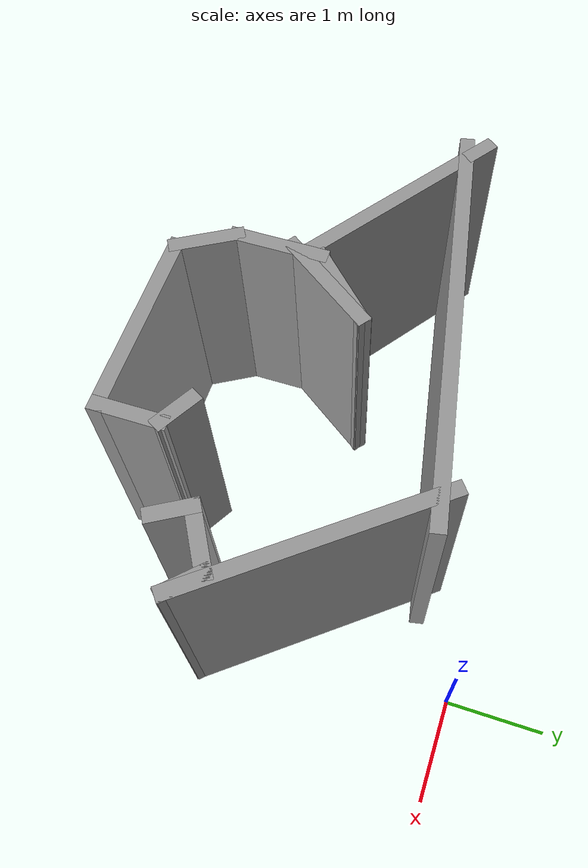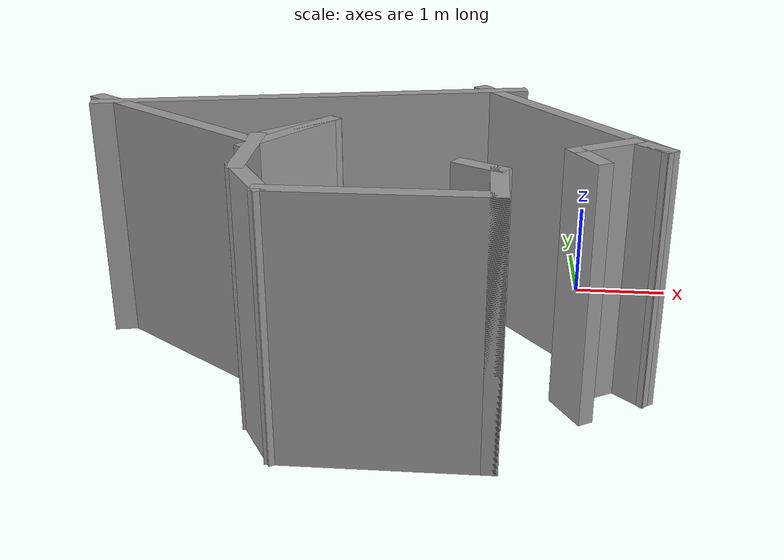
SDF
<?xml version='1.0'?>
<sdf version='1.7'>
  <model name='test_house'>
    <pose>-2.27886 -1.89638 0 0 -0 0</pose>
    <link name='Wall_0'>
      <collision name='Wall_0_Collision'>
        <geometry>
          <box>
            <size>2 0.15 2.5</size>
          </box>
        </geometry>
        <pose>0 0 1.25 0 -0 0</pose>
      </collision>
      <visual name='Wall_0_Visual'>
        <pose>0 0 1.25 0 -0 0</pose>
        <geometry>
          <box>
            <size>2 0.15 2.5</size>
          </box>
        </geometry>
        <material>
          <script>
            <uri>file://media/materials/scripts/gazebo.material</uri>
            <name>Gazebo/Grey</name>
          </script>
          <ambient>1 1 1 1</ambient>
        </material>
        <meta>
          <layer>0</layer>
        </meta>
      </visual>
      <pose>0.361944 -1.79393 0 0 -0 0</pose>
    </link>
    <link name='Wall_1'>
      <collision name='Wall_1_Collision'>
        <geometry>
          <box>
            <size>0.75 0.15 2.5</size>
          </box>
        </geometry>
        <pose>0 0 1.25 0 -0 0</pose>
      </collision>
      <visual name='Wall_1_Visual'>
        <pose>0 0 1.25 0 -0 0</pose>
        <geometry>
          <box>
            <size>0.75 0.15 2.5</size>
          </box>
        </geometry>
        <material>
          <script>
            <uri>file://media/materials/scripts/gazebo.material</uri>
            <name>Gazebo/Grey</name>
          </script>
          <ambient>1 1 1 1</ambient>
        </material>
        <meta>
          <layer>0</layer>
        </meta>
      </visual>
      <pose>1.28694 -1.49393 0 0 -0 1.5708</pose>
    </link>
    <link name='Wall_10'>
      <collision name='Wall_10_Collision'>
        <geometry>
          <box>
            <size>2.33748 0.15 2.5</size>
          </box>
        </geometry>
        <pose>0 0 1.25 0 -0 0</pose>
      </collision>
      <visual name='Wall_10_Visual'>
        <pose>0 0 1.25 0 -0 0</pose>
        <geometry>
          <box>
            <size>2.33748 0.15 2.5</size>
          </box>
        </geometry>
        <material>
          <script>
            <uri>file://media/materials/scripts/gazebo.material</uri>
            <name>Gazebo/Grey</name>
          </script>
          <ambient>1 1 1 1</ambient>
        </material>
        <meta>
          <layer>0</layer>
        </meta>
      </visual>
      <pose>-1.82997 0.127471 0 0 -0 2.51447</pose>
    </link>
    <link name='Wall_11'>
      <collision name='Wall_11_Collision'>
        <geometry>
          <box>
            <size>4.40136 0.15 2.5</size>
          </box>
        </geometry>
        <pose>0 0 1.25 0 -0 0</pose>
      </collision>
      <visual name='Wall_11_Visual'>
        <pose>0 0 1.25 0 -0 0</pose>
        <geometry>
          <box>
            <size>4.40136 0.15 2.5</size>
          </box>
        </geometry>
        <material>
          <script>
            <uri>file://media/materials/scripts/gazebo.material</uri>
            <name>Gazebo/Grey</name>
          </script>
          <ambient>1 1 1 1</ambient>
        </material>
        <meta>
          <layer>0</layer>
        </meta>
      </visual>
      <pose>-0.588094 0.970431 0 0 -0 0.190392</pose>
    </link>
    <link name='Wall_12'>
      <collision name='Wall_12_Collision'>
        <geometry>
          <box>
            <size>2.70339 0.15 2.5</size>
          </box>
        </geometry>
        <pose>0 0 1.25 0 -0 0</pose>
      </collision>
      <visual name='Wall_12_Visual'>
        <pose>0 0 1.25 0 -0 0</pose>
        <geometry>
          <box>
            <size>2.70339 0.15 2.5</size>
          </box>
        </geometry>
        <material>
          <script>
            <uri>file://media/materials/scripts/gazebo.material</uri>
            <name>Gazebo/Grey</name>
          </script>
          <ambient>1 1 1 1</ambient>
        </material>
        <meta>
          <layer>0</layer>
        </meta>
      </visual>
      <pose>1.9257 0.428997 0 0 -0 -0.905029</pose>
    </link>
    <link name='Wall_13'>
      <collision name='Wall_13_Collision'>
        <geometry>
          <box>
            <size>0.5 0.15 2.5</size>
          </box>
        </geometry>
        <pose>0 0 1.25 0 -0 0</pose>
      </collision>
      <visual name='Wall_13_Visual'>
        <pose>0 0 1.25 0 -0 0</pose>
        <geometry>
          <box>
            <size>0.5 0.15 2.5</size>
          </box>
        </geometry>
        <material>
          <script>
            <uri>file://media/materials/scripts/gazebo.material</uri>
            <name>Gazebo/Grey</name>
          </script>
          <ambient>1 1 1 1</ambient>
        </material>
        <meta>
          <layer>0</layer>
        </meta>
      </visual>
      <pose>2.59052 -0.451307 0 0 -0 2.35619</pose>
    </link>
    <link name='Wall_14'>
      <collision name='Wall_14_Collision'>
        <geometry>
          <box>
            <size>0.75 0.15 2.5</size>
          </box>
        </geometry>
        <pose>0 0 1.25 0 -0 0</pose>
      </collision>
      <visual name='Wall_14_Visual'>
        <pose>0 0 1.25 0 -0 0</pose>
        <geometry>
          <box>
            <size>0.75 0.15 2.5</size>
          </box>
        </geometry>
        <material>
          <script>
            <uri>file://media/materials/scripts/gazebo.material</uri>
            <name>Gazebo/Grey</name>
          </script>
          <ambient>1 1 1 1</ambient>
        </material>
        <meta>
          <layer>0</layer>
        </meta>
      </visual>
      <pose>2.20697 -0.477563 0 0 -0 -2.61799</pose>
    </link>
    <link name='Wall_15'>
      <collision name='Wall_15_Collision'>
        <geometry>
          <box>
            <size>0.5 0.15 2.5</size>
          </box>
        </geometry>
        <pose>0 0 1.25 0 -0 0</pose>
      </collision>
      <visual name='Wall_15_Visual'>
        <pose>0 0 1.25 0 -0 0</pose>
        <geometry>
          <box>
            <size>0.5 0.15 2.5</size>
          </box>
        </geometry>
        <material>
          <script>
            <uri>file://media/materials/scripts/gazebo.material</uri>
            <name>Gazebo/Grey</name>
          </script>
          <ambient>1 1 1 1</ambient>
        </material>
        <meta>
          <layer>0</layer>
        </meta>
      </visual>
      <pose>2.03466 -0.779117 0 0 -0 -1.0472</pose>
    </link>
    <link name='Wall_2'>
      <collision name='Wall_2_Collision'>
        <geometry>
          <box>
            <size>0.5 0.15 2.5</size>
          </box>
        </geometry>
        <pose>0 0 1.25 0 -0 0</pose>
      </collision>
      <visual name='Wall_2_Visual'>
        <pose>0 0 1.25 0 -0 0</pose>
        <geometry>
          <box>
            <size>0.5 0.15 2.5</size>
          </box>
        </geometry>
        <material>
          <script>
            <uri>file://media/materials/scripts/gazebo.material</uri>
            <name>Gazebo/Grey</name>
          </script>
          <ambient>1 1 1 1</ambient>
        </material>
        <meta>
          <layer>0</layer>
        </meta>
      </visual>
      <pose>1.13539 -1.10643 0 0 -0 2.61799</pose>
    </link>
    <link name='Wall_4'>
      <collision name='Wall_4_Collision'>
        <geometry>
          <box>
            <size>0.75 0.15 2.5</size>
          </box>
        </geometry>
        <pose>0 0 1.25 0 -0 0</pose>
      </collision>
      <visual name='Wall_4_Visual'>
        <pose>0 0 1.25 0 -0 0</pose>
        <geometry>
          <box>
            <size>0.75 0.15 2.5</size>
          </box>
        </geometry>
        <material>
          <script>
            <uri>file://media/materials/scripts/gazebo.material</uri>
            <name>Gazebo/Grey</name>
          </script>
          <ambient>1 1 1 1</ambient>
        </material>
        <meta>
          <layer>0</layer>
        </meta>
      </visual>
      <pose>-0.713056 -1.53412 0 0 -0 2.0944</pose>
    </link>
    <link name='Wall_5'>
      <collision name='Wall_5_Collision'>
        <geometry>
          <box>
            <size>1 0.15 2.5</size>
          </box>
        </geometry>
        <pose>0 0 1.25 0 -0 0</pose>
      </collision>
      <visual name='Wall_5_Visual'>
        <pose>0 0 1.25 0 -0 0</pose>
        <geometry>
          <box>
            <size>1 0.15 2.5</size>
          </box>
        </geometry>
        <material>
          <script>
            <uri>file://media/materials/scripts/gazebo.material</uri>
            <name>Gazebo/Grey</name>
          </script>
          <ambient>1 1 1 1</ambient>
        </material>
        <meta>
          <layer>0</layer>
        </meta>
      </visual>
      <pose>-0.863056 -0.849316 0 0 -0 1.5708</pose>
    </link>
    <link name='Wall_7'>
      <collision name='Wall_7_Collision'>
        <geometry>
          <box>
            <size>0.95974 0.15 2.5</size>
          </box>
        </geometry>
        <pose>0 0 1.25 0 -0 0</pose>
      </collision>
      <visual name='Wall_7_Visual'>
        <pose>0 0 1.25 0 -0 0</pose>
        <geometry>
          <box>
            <size>0.95974 0.15 2.5</size>
          </box>
        </geometry>
        <material>
          <script>
            <uri>file://media/materials/scripts/gazebo.material</uri>
            <name>Gazebo/Grey</name>
          </script>
          <ambient>1 1 1 1</ambient>
        </material>
        <meta>
          <layer>0</layer>
        </meta>
      </visual>
      <pose>-0.577339 -0.137461 0 0 -0 -2.35421</pose>
    </link>
    <link name='Wall_9'>
      <collision name='Wall_9_Collision'>
        <geometry>
          <box>
            <size>1.2098 0.15 2.5</size>
          </box>
        </geometry>
        <pose>0 0 1.25 0 -0 0</pose>
      </collision>
      <visual name='Wall_9_Visual'>
        <pose>0 0 1.25 0 -0 0</pose>
        <geometry>
          <box>
            <size>1.2098 0.15 2.5</size>
          </box>
        </geometry>
        <material>
          <script>
            <uri>file://media/materials/scripts/gazebo.material</uri>
            <name>Gazebo/Grey</name>
          </script>
          <ambient>1 1 1 1</ambient>
        </material>
        <meta>
          <layer>0</layer>
        </meta>
      </visual>
      <pose>-0.597869 -0.283048 0 0 -0 -2.18699</pose>
    </link>
    <static>1</static>
  </model>
</sdf>
